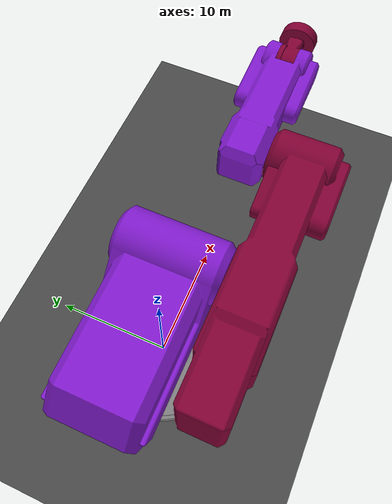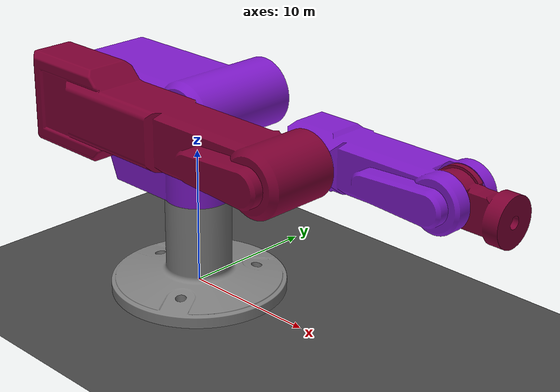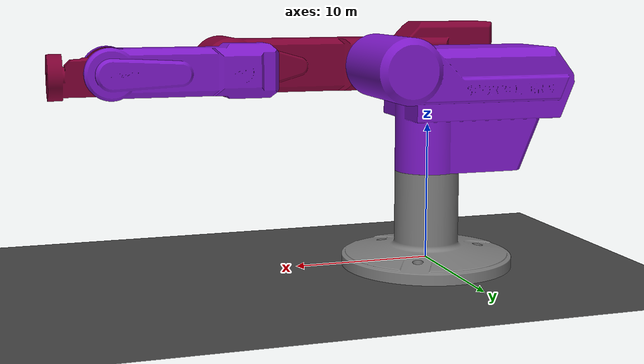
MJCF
<mujoco model="pendulum">
  <option timestep="0.005" iterations="50" solver="Newton" tolerance="1e-10"/>

  <size njmax="50" nconmax="10" nstack="200"/>

  <visual>
    <rgba haze=".3 .3 .3 1"/>
  </visual>

  <asset>
    <texture type="skybox" builtin="gradient" rgb1="0.6 0.6 0.6" rgb2="0 0 0" width="512" height="512"/>

    <texture name="texplane" type="2d" builtin="checker" rgb1=".25 .25 .25" rgb2=".3 .3 .3" width="512" height="512" mark="cross" markrgb=".8 .8 .8"/>

    <material name="matplane" reflectance="0.3" texture="texplane" texrepeat="1 1" texuniform="true"/>

    <mesh file="Base.stl"/>
    <mesh file="Body.stl"/>
    <mesh file="Shoulder.stl"/>
    <mesh file="Arm.stl"/>
    <mesh file="Wrist.stl"/>
  </asset>

  <worldbody>
    <geom name="floor" pos="0 0 -0.5" size="0 0 1" type="plane" material="matplane"/>

    <light directional="true" diffuse=".8 .8 .8" specular=".2 .2 .2" pos="0 0 0" dir="0 0 -1"/>

    <body pos="0 0 0">
        <geom name="base" contype="2" conaffinity="57" type="mesh" mesh="Base" pos="0 0 -0.5" euler="0 0 -90" mass="0.0001" />
        <body pos="0 0 6.6">
            <joint name="bodyJoint" type="hinge" pos="0 0 0" axis="0 0 1" damping="200"/>
            <geom name="body" contype="4" conaffinity="49" type="mesh" mesh="Body" pos="0.04 0 -0.01" euler="0 0 -90" rgba=".5 .1 .8 1" mass="0.01" group="1"/>
            <body pos="2.75 -4.54 7.55">
                <joint name="shoulderJoint" type="hinge" pos="0 0 0" axis="0 1 0" damping="200"/>
                <geom name="shoulder" contype="8" conaffinity="35" type="mesh" mesh="Shoulder" pos="0 0 0" euler="0 0 -90" rgba=".5 0 .2 1" mass="0.01" group="1"/>
                <body pos="11.02 1.52 0">
                    <joint name="armJoint" type="hinge" pos="0 0 0" axis="0 1 0" damping="100"/>
                    <geom name="arm" contype="16" conaffinity="7" type="mesh" mesh="Arm" pos="0 0 0" euler="0 0 -90" rgba=".5 .1 .8 1" mass="0.01" group="1"/>
                    <body pos="9.05 2.37 0">
                        <joint name="wristJoint" type="hinge" pos="0 0 0" axis="0 1 0" damping="100"/>
                        <geom name="wrist" contype="32" conaffinity="15" type="mesh" mesh="Wrist" pos="0 0 0" euler="0 0 -90" rgba=".5 0 .2 1" mass="0.01" group="1"/>
                    </body>
                </body>
            </body>
        </body>
    </body>

  </worldbody>

  <actuator>
    <motor name="Body" gear="1000"  joint="bodyJoint"/>
    <motor name="Shoulder" gear="1000"  joint="shoulderJoint"/>
    <motor name="Arm" gear="1000"  joint="armJoint"/>
    <motor name="Wrist" gear="100"  joint="wristJoint"/>
  </actuator>
</mujoco>
